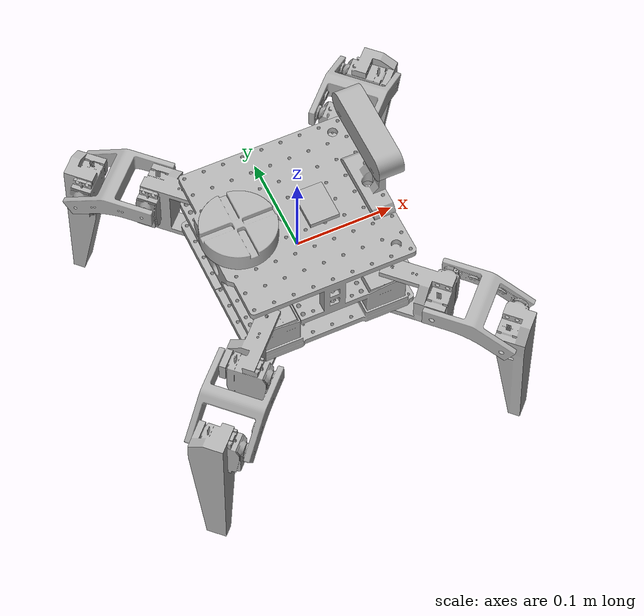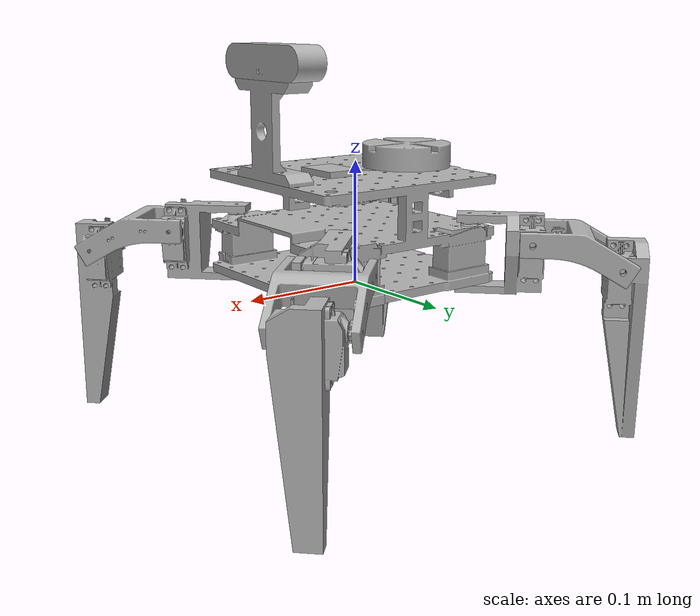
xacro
<?xml version="1.0" ?>
<robot name="prjct_spider_bot" xmlns:xacro="http://www.ros.org/wiki/xacro">

  <xacro:arg name="use_ros2_control" default="false"/>

<xacro:include filename="$(find prjct_spider_bot_description)/urdf/materials.xacro" />
<xacro:if value="$(arg use_ros2_control)">
  <xacro:include filename="$(find prjct_spider_bot_description)/urdf/prjct_spider_bot.ros2control.xml" />
</xacro:if>
<xacro:include filename="$(find prjct_spider_bot_description)/urdf/prjct_spider_bot.gazebo" />
<link name="base_link">
  <inertial>
    <origin xyz="-0.011634383299055345 -0.020012327327441907 0.04021488449284461" rpy="0 0 0"/>
    <mass value="5.582430267110478"/>
    <inertia ixx="0.022303" iyy="0.019413" izz="0.030673" ixy="-6e-06" iyz="4e-06" ixz="0.000124"/>
  </inertial>
  <visual>
    <origin xyz="0 0 0" rpy="0 0 0"/>
    <geometry>
      <mesh filename="file://$(find prjct_spider_bot_description)/meshes/base_link.stl" scale="0.001 0.001 0.001"/>
    </geometry>
    <material name="silver"/>
  </visual>
  <collision>
    <origin xyz="0 0 0" rpy="0 0 0"/>
    <geometry>
      <mesh filename="file://$(find prjct_spider_bot_description)/meshes/base_link.stl" scale="0.001 0.001 0.001"/>
    </geometry>
  </collision>
</link>

<link name="lidar_1">
  <inertial>
    <origin xyz="1.1999484417213324e-07 7.555305850739935e-08 0.009521070328133499" rpy="0 0 0"/>
    <mass value="0.6521818172175858"/>
    <inertia ixx="0.000253" iyy="0.000253" izz="0.000465" ixy="-0.0" iyz="-0.0" ixz="-0.0"/>
  </inertial>
  <visual>
    <origin xyz="0.069407 0.019459 -0.0877" rpy="0 0 0"/>
    <geometry>
      <mesh filename="file://$(find prjct_spider_bot_description)/meshes/lidar_1.stl" scale="0.001 0.001 0.001"/>
    </geometry>
    <material name="silver"/>
  </visual>
  <collision>
    <origin xyz="0.069407 0.019459 -0.0877" rpy="0 0 0"/>
    <geometry>
      <mesh filename="file://$(find prjct_spider_bot_description)/meshes/lidar_1.stl" scale="0.001 0.001 0.001"/>
    </geometry>
  </collision>
</link>

<link name="imu_1">
  <inertial>
    <origin xyz="6.730727086790012e-16 -4.6485218993877475e-07 0.002500000000000016" rpy="0 0 0"/>
    <mass value="0.047099999999999996"/>
    <inertia ixx="6e-06" iyy="4e-06" izz="1e-05" ixy="0.0" iyz="-0.0" ixz="0.0"/>
  </inertial>
  <visual>
    <origin xyz="-0.01 0.02 -0.0877" rpy="0 0 0"/>
    <geometry>
      <mesh filename="file://$(find prjct_spider_bot_description)/meshes/imu_1.stl" scale="0.001 0.001 0.001"/>
    </geometry>
    <material name="silver"/>
  </visual>
  <collision>
    <origin xyz="-0.01 0.02 -0.0877" rpy="0 0 0"/>
    <geometry>
      <mesh filename="file://$(find prjct_spider_bot_description)/meshes/imu_1.stl" scale="0.001 0.001 0.001"/>
    </geometry>
  </collision>
</link>

<link name="camera_stand_1">
  <inertial>
    <origin xyz="0.002322519957098118 -4.6855707672502356e-07 0.039074935332732846" rpy="0 0 0"/>
    <mass value="0.28621405783156734"/>
    <inertia ixx="0.000356" iyy="0.000274" izz="0.000106" ixy="-0.0" iyz="-0.0" ixz="-0.0"/>
  </inertial>
  <visual>
    <origin xyz="-0.064 0.02 -0.0877" rpy="0 0 0"/>
    <geometry>
      <mesh filename="file://$(find prjct_spider_bot_description)/meshes/camera_stand_1.stl" scale="0.001 0.001 0.001"/>
    </geometry>
    <material name="silver"/>
  </visual>
  <collision>
    <origin xyz="-0.064 0.02 -0.0877" rpy="0 0 0"/>
    <geometry>
      <mesh filename="file://$(find prjct_spider_bot_description)/meshes/camera_stand_1.stl" scale="0.001 0.001 0.001"/>
    </geometry>
  </collision>
</link>

<link name="camera_1">
  <inertial>
    <origin xyz="0.0008434977883624573 5.831530578740904e-05 0.013851911513465182" rpy="0 0 0"/>
    <mass value="0.04133715258262728"/>
    <inertia ixx="4.5e-05" iyy="8e-06" izz="4.5e-05" ixy="0.0" iyz="0.0" ixz="-0.0"/>
  </inertial>
  <visual>
    <origin xyz="-0.061225 0.02 -0.1647" rpy="0 0 0"/>
    <geometry>
      <mesh filename="file://$(find prjct_spider_bot_description)/meshes/camera_1.stl" scale="0.001 0.001 0.001"/>
    </geometry>
    <material name="silver"/>
  </visual>
  <collision>
    <origin xyz="-0.061225 0.02 -0.1647" rpy="0 0 0"/>
    <geometry>
      <mesh filename="file://$(find prjct_spider_bot_description)/meshes/camera_1.stl" scale="0.001 0.001 0.001"/>
    </geometry>
  </collision>
</link>
<!-- === Locked sensor mount frames (aliases) === -->
<link name="lidar_link"/>
<link name="camera_link"/>
<link name="camera_optical_frame"/>

<joint name="J_lidar_alias" type="fixed">
  <parent link="lidar_1"/>
  <child link="lidar_link"/>
  <origin xyz="0 0 0" rpy="0 0 0"/>
</joint>

<joint name="J_camera_alias" type="fixed">
  <parent link="camera_1"/>
  <child link="camera_link"/>
  <origin xyz="0 0 0" rpy="0 0 0"/>
</joint>

<!-- REP-103 optical frame: X right, Y down, Z forward -->
<joint name="J_camera_optical" type="fixed">
  <parent link="camera_link"/>
  <child link="camera_optical_frame"/>
  <origin xyz="0 0 0" rpy="-1.57079632679 0 -1.57079632679"/>
</joint>

<link name="coxa_FR_1">
  <inertial>
    <origin xyz="-0.028011122462089755 0.02918946766406348 -0.02516145237879074" rpy="0 0 0"/>
    <mass value="0.5326447248518721"/>
    <inertia ixx="0.00026" iyy="0.000276" izz="0.000188" ixy="2.9e-05" iyz="-1e-05" ixz="-2e-06"/>
  </inertial>
  <visual>
    <origin xyz="0.0749 -0.0542 -0.0528" rpy="0 0 0"/>
    <geometry>
      <mesh filename="file://$(find prjct_spider_bot_description)/meshes/coxa_FR_1.stl" scale="0.001 0.001 0.001"/>
    </geometry>
    <material name="silver"/>
  </visual>
  <collision>
    <origin xyz="0.0749 -0.0542 -0.0528" rpy="0 0 0"/>
    <geometry>
      <mesh filename="file://$(find prjct_spider_bot_description)/meshes/coxa_FR_1.stl" scale="0.001 0.001 0.001"/>
    </geometry>
  </collision>
</link>

<link name="femur_FR_1">
  <inertial>
    <origin xyz="-0.006558818685370449 0.04487966340235518 -0.0035371973943164325" rpy="0 0 0"/>
    <mass value="0.3037238401732045"/>
    <inertia ixx="0.000169" iyy="0.000169" izz="0.000293" ixy="-3.2e-05" iyz="1.9e-05" ixz="-1.9e-05"/>
  </inertial>
  <visual>
    <origin xyz="0.130196 -0.070181 -0.0387" rpy="0 0 0"/>
    <geometry>
      <mesh filename="file://$(find prjct_spider_bot_description)/meshes/femur_FR_1.stl" scale="0.001 0.001 0.001"/>
    </geometry>
    <material name="silver"/>
  </visual>
  <collision>
    <origin xyz="0.130196 -0.070181 -0.0387" rpy="0 0 0"/>
    <geometry>
      <mesh filename="file://$(find prjct_spider_bot_description)/meshes/femur_FR_1.stl" scale="0.001 0.001 0.001"/>
    </geometry>
  </collision>
</link>

<link name="tibia_FR_1">
  <inertial>
    <origin xyz="0.015552752309943102 0.02595204711365401 -0.04435033820279627" rpy="0 0 0"/>
    <mass value="0.856718844269578"/>
    <inertia ixx="0.001697" iyy="0.001665" izz="0.000146" ixy="-1.3e-05" iyz="6.5e-05" ixz="-7.6e-05"/>
  </inertial>
  <visual>
    <origin xyz="0.179439 -0.119425 -0.02004" rpy="0 0 0"/>
    <geometry>
      <mesh filename="file://$(find prjct_spider_bot_description)/meshes/tibia_FR_1.stl" scale="0.001 0.001 0.001"/>
    </geometry>
    <material name="silver"/>
  </visual>
  <collision>
    <origin xyz="0.179439 -0.119425 -0.02004" rpy="0 0 0"/>
    <geometry>
      <mesh filename="file://$(find prjct_spider_bot_description)/meshes/tibia_FR_1.stl" scale="0.001 0.001 0.001"/>
    </geometry>
  </collision>
</link>

<link name="coxa_BR_1">
  <inertial>
    <origin xyz="0.029189002811872485 0.028011587314280273 -0.025161452378790708" rpy="0 0 0"/>
    <mass value="0.5326447248518721"/>
    <inertia ixx="0.000276" iyy="0.00026" izz="0.000188" ixy="-2.9e-05" iyz="2e-06" ixz="-1e-05"/>
  </inertial>
  <visual>
    <origin xyz="-0.0549 -0.0542 -0.0528" rpy="0 0 0"/>
    <geometry>
      <mesh filename="file://$(find prjct_spider_bot_description)/meshes/coxa_BR_1.stl" scale="0.001 0.001 0.001"/>
    </geometry>
    <material name="silver"/>
  </visual>
  <collision>
    <origin xyz="-0.0549 -0.0542 -0.0528" rpy="0 0 0"/>
    <geometry>
      <mesh filename="file://$(find prjct_spider_bot_description)/meshes/coxa_BR_1.stl" scale="0.001 0.001 0.001"/>
    </geometry>
  </collision>
</link>

<link name="femur_BR_1">
  <inertial>
    <origin xyz="0.04487919855016356 0.0065592835375610226 -0.003537197394316516" rpy="0 0 0"/>
    <mass value="0.3037238401732045"/>
    <inertia ixx="0.000169" iyy="0.000169" izz="0.000293" ixy="3.2e-05" iyz="1.9e-05" ixz="1.9e-05"/>
  </inertial>
  <visual>
    <origin xyz="-0.070881 -0.109496 -0.0387" rpy="0 0 0"/>
    <geometry>
      <mesh filename="file://$(find prjct_spider_bot_description)/meshes/femur_BR_1.stl" scale="0.001 0.001 0.001"/>
    </geometry>
    <material name="silver"/>
  </visual>
  <collision>
    <origin xyz="-0.070881 -0.109496 -0.0387" rpy="0 0 0"/>
    <geometry>
      <mesh filename="file://$(find prjct_spider_bot_description)/meshes/femur_BR_1.stl" scale="0.001 0.001 0.001"/>
    </geometry>
  </collision>
</link>

<link name="tibia_BR_1">
  <inertial>
    <origin xyz="0.0259525822614622 -0.015553287457752918 -0.04435033820279581" rpy="0 0 0"/>
    <mass value="0.856718844269578"/>
    <inertia ixx="0.001665" iyy="0.001697" izz="0.000146" ixy="1.3e-05" iyz="7.6e-05" ixz="6.5e-05"/>
  </inertial>
  <visual>
    <origin xyz="-0.120124 -0.15874 -0.02004" rpy="0 0 0"/>
    <geometry>
      <mesh filename="file://$(find prjct_spider_bot_description)/meshes/tibia_BR_1.stl" scale="0.001 0.001 0.001"/>
    </geometry>
    <material name="silver"/>
  </visual>
  <collision>
    <origin xyz="-0.120124 -0.15874 -0.02004" rpy="0 0 0"/>
    <geometry>
      <mesh filename="file://$(find prjct_spider_bot_description)/meshes/tibia_BR_1.stl" scale="0.001 0.001 0.001"/>
    </geometry>
  </collision>
</link>

<link name="coxa_FL_1">
  <inertial>
    <origin xyz="-0.029189002811871978 -0.028011587314280176 -0.025161452378790538" rpy="0 0 0"/>
    <mass value="0.5326447248518721"/>
    <inertia ixx="0.000276" iyy="0.00026" izz="0.000188" ixy="-2.9e-05" iyz="-2e-06" ixz="1e-05"/>
  </inertial>
  <visual>
    <origin xyz="0.0749 0.0942 -0.0528" rpy="0 0 0"/>
    <geometry>
      <mesh filename="file://$(find prjct_spider_bot_description)/meshes/coxa_FL_1.stl" scale="0.001 0.001 0.001"/>
    </geometry>
    <material name="silver"/>
  </visual>
  <collision>
    <origin xyz="0.0749 0.0942 -0.0528" rpy="0 0 0"/>
    <geometry>
      <mesh filename="file://$(find prjct_spider_bot_description)/meshes/coxa_FL_1.stl" scale="0.001 0.001 0.001"/>
    </geometry>
  </collision>
</link>

<link name="femur_FL_1">
  <inertial>
    <origin xyz="-0.0448791985501633 -0.006559283537560828 -0.0035371973943163076" rpy="0 0 0"/>
    <mass value="0.3037238401732045"/>
    <inertia ixx="0.000169" iyy="0.000169" izz="0.000293" ixy="3.2e-05" iyz="-1.9e-05" ixz="-1.9e-05"/>
  </inertial>
  <visual>
    <origin xyz="0.090881 0.149496 -0.0387" rpy="0 0 0"/>
    <geometry>
      <mesh filename="file://$(find prjct_spider_bot_description)/meshes/femur_FL_1.stl" scale="0.001 0.001 0.001"/>
    </geometry>
    <material name="silver"/>
  </visual>
  <collision>
    <origin xyz="0.090881 0.149496 -0.0387" rpy="0 0 0"/>
    <geometry>
      <mesh filename="file://$(find prjct_spider_bot_description)/meshes/femur_FL_1.stl" scale="0.001 0.001 0.001"/>
    </geometry>
  </collision>
</link>

<link name="tibia_FL_1">
  <inertial>
    <origin xyz="-0.025952582261461687 0.015553287457753001 -0.0443503382027953" rpy="0 0 0"/>
    <mass value="0.856718844269578"/>
    <inertia ixx="0.001665" iyy="0.001697" izz="0.000146" ixy="1.3e-05" iyz="-7.6e-05" ixz="-6.5e-05"/>
  </inertial>
  <visual>
    <origin xyz="0.140124 0.19874 -0.02004" rpy="0 0 0"/>
    <geometry>
      <mesh filename="file://$(find prjct_spider_bot_description)/meshes/tibia_FL_1.stl" scale="0.001 0.001 0.001"/>
    </geometry>
    <material name="silver"/>
  </visual>
  <collision>
    <origin xyz="0.140124 0.19874 -0.02004" rpy="0 0 0"/>
    <geometry>
      <mesh filename="file://$(find prjct_spider_bot_description)/meshes/tibia_FL_1.stl" scale="0.001 0.001 0.001"/>
    </geometry>
  </collision>
</link>

<link name="coxa_BL_1">
  <inertial>
    <origin xyz="0.030448520904464337 -0.026637064512584144 -0.02516145237879068" rpy="0 0 0"/>
    <mass value="0.5326447248518721"/>
    <inertia ixx="0.000255" iyy="0.000281" izz="0.000188" ixy="2.7e-05" iyz="1e-05" ixz="1e-06"/>
  </inertial>
  <visual>
    <origin xyz="-0.0549 0.0942 -0.0528" rpy="0 0 0"/>
    <geometry>
      <mesh filename="file://$(find prjct_spider_bot_description)/meshes/coxa_BL_1.stl" scale="0.001 0.001 0.001"/>
    </geometry>
    <material name="silver"/>
  </visual>
  <collision>
    <origin xyz="-0.0549 0.0942 -0.0528" rpy="0 0 0"/>
    <geometry>
      <mesh filename="file://$(find prjct_spider_bot_description)/meshes/coxa_BL_1.stl" scale="0.001 0.001 0.001"/>
    </geometry>
  </collision>
</link>

<link name="femur_BL_1">
  <inertial>
    <origin xyz="0.010445758234201477 -0.04413706930762948 -0.0035371973943158427" rpy="0 0 0"/>
    <mass value="0.3037238401732045"/>
    <inertia ixx="0.000174" iyy="0.000163" izz="0.000293" ixy="-3.2e-05" iyz="-1.7e-05" ixz="2e-05"/>
  </inertial>
  <visual>
    <origin xyz="-0.111378 0.105301 -0.0387" rpy="0 0 0"/>
    <geometry>
      <mesh filename="file://$(find prjct_spider_bot_description)/meshes/femur_BL_1.stl" scale="0.001 0.001 0.001"/>
    </geometry>
    <material name="silver"/>
  </visual>
  <collision>
    <origin xyz="-0.111378 0.105301 -0.0387" rpy="0 0 0"/>
    <geometry>
      <mesh filename="file://$(find prjct_spider_bot_description)/meshes/femur_BL_1.stl" scale="0.001 0.001 0.001"/>
    </geometry>
  </collision>
</link>

<link name="tibia_BL_1">
  <inertial>
    <origin xyz="-0.013231809099896463 -0.02720943017943131 -0.04435033820279533" rpy="0 0 0"/>
    <mass value="0.856718844269578"/>
    <inertia ixx="0.001699" iyy="0.001663" izz="0.000146" ixy="-1e-05" iyz="-5.8e-05" ixz="8.1e-05"/>
  </inertial>
  <visual>
    <origin xyz="-0.164726 0.150065 -0.02004" rpy="0 0 0"/>
    <geometry>
      <mesh filename="file://$(find prjct_spider_bot_description)/meshes/tibia_BL_1.stl" scale="0.001 0.001 0.001"/>
    </geometry>
    <material name="silver"/>
  </visual>
  <collision>
    <origin xyz="-0.164726 0.150065 -0.02004" rpy="0 0 0"/>
    <geometry>
      <mesh filename="file://$(find prjct_spider_bot_description)/meshes/tibia_BL_1.stl" scale="0.001 0.001 0.001"/>
    </geometry>
  </collision>
</link>

<joint name="J_Lidar" type="continuous">
  <origin xyz="-0.069407 -0.019459 0.0877" rpy="0 0 0"/>
  <parent link="base_link"/>
  <child link="lidar_1"/>
  <axis xyz="0.0 0.0 -1.0"/>
</joint>

<joint name="J_IMU" type="fixed">
  <origin xyz="0.01 -0.02 0.0877" rpy="0 0 0"/>
  <parent link="base_link"/>
  <child link="imu_1"/>
</joint>

<joint name="J_camstand" type="fixed">
  <origin xyz="0.064 -0.02 0.0877" rpy="0 0 0"/>
  <parent link="base_link"/>
  <child link="camera_stand_1"/>
</joint>

<joint name="J_Camera" type="fixed">
  <origin xyz="-0.002775 0.0 0.077" rpy="0 0 0"/>
  <parent link="camera_stand_1"/>
  <child link="camera_1"/>
</joint>

<joint name="J_Coxa_FR" type="revolute">
  <origin xyz="-0.0749 0.0542 0.0528" rpy="0 0 0"/>
  <parent link="base_link"/>
  <child link="coxa_FR_1"/>
  <axis xyz="0.0 0.0 1.0"/>
  <limit upper="1.308997" lower="-1.308997" effort="100" velocity="100"/>
</joint>

<joint name="J_Femur_FR" type="revolute">
  <origin xyz="-0.055296 0.015981 -0.0141" rpy="0 0 0"/>
  <parent link="coxa_FR_1"/>
  <child link="femur_FR_1"/>
  <axis xyz="-0.707107 -0.707107 -0.0"/>
  <limit upper="0.785398" lower="-1.570796" effort="100" velocity="100"/>
</joint>

<joint name="J_Tibia_FR" type="revolute">
  <origin xyz="-0.049243 0.049244 -0.01866" rpy="0 0 0"/>
  <parent link="femur_FR_1"/>
  <child link="tibia_FR_1"/>
  <axis xyz="0.707107 0.707107 -0.0"/>
  <limit upper="1.570796" lower="-1.308997" effort="100" velocity="100"/>
</joint>

<joint name="J_Coxa_BR" type="revolute">
  <origin xyz="0.0549 0.0542 0.0528" rpy="0 0 0"/>
  <parent link="base_link"/>
  <child link="coxa_BR_1"/>
  <axis xyz="0.0 0.0 1.0"/>
  <limit upper="1.308997" lower="-1.308997" effort="100" velocity="100"/>
</joint>

<joint name="J_Femur_BR" type="revolute">
  <origin xyz="0.015981 0.055296 -0.0141" rpy="0 0 0"/>
  <parent link="coxa_BR_1"/>
  <child link="femur_BR_1"/>
  <axis xyz="-0.707107 0.707107 -0.0"/>
  <limit upper="0.785398" lower="-1.570796" effort="100" velocity="100"/>
</joint>

<joint name="J_Tibia_BR" type="revolute">
  <origin xyz="0.049243 0.049244 -0.01866" rpy="0 0 0"/>
  <parent link="femur_BR_1"/>
  <child link="tibia_BR_1"/>
  <axis xyz="0.707107 -0.707107 0.0"/>
  <limit upper="1.570796" lower="-1.308997" effort="100" velocity="100"/>
</joint>

<joint name="J_Coxa_FL" type="revolute">
  <origin xyz="-0.0749 -0.0942 0.0528" rpy="0 0 0"/>
  <parent link="base_link"/>
  <child link="coxa_FL_1"/>
  <axis xyz="0.0 0.0 1.0"/>
  <limit upper="1.570796" lower="-1.047198" effort="100" velocity="100"/>
</joint>

<joint name="J_Femur_FL" type="revolute">
  <origin xyz="-0.015981 -0.055296 -0.0141" rpy="0 0 0"/>
  <parent link="coxa_FL_1"/>
  <child link="femur_FL_1"/>
  <axis xyz="0.707107 -0.707107 -0.0"/>
  <limit upper="0.785398" lower="-1.570796" effort="100" velocity="100"/>
</joint>

<joint name="J_Tibia_FL" type="revolute">
  <origin xyz="-0.049243 -0.049244 -0.01866" rpy="0 0 0"/>
  <parent link="femur_FL_1"/>
  <child link="tibia_FL_1"/>
  <axis xyz="-0.707107 0.707107 0.0"/>
  <limit upper="1.570796" lower="-1.308997" effort="100" velocity="100"/>
</joint>

<joint name="J_Coxa_BL" type="revolute">
  <origin xyz="0.0549 -0.0942 0.0528" rpy="0 0 0"/>
  <parent link="base_link"/>
  <child link="coxa_BL_1"/>
  <axis xyz="0.0 0.0 1.0"/>
  <limit upper="1.22173" lower="-1.396263" effort="100" velocity="100"/>
</joint>

<joint name="J_Femur_BL" type="revolute">
  <origin xyz="0.056478 -0.011101 -0.0141" rpy="0 0 0"/>
  <parent link="coxa_BL_1"/>
  <child link="femur_BL_1"/>
  <axis xyz="0.642788 0.766044 -0.0"/>
  <limit upper="0.785398" lower="-1.570796" effort="100" velocity="100"/>
</joint>

<joint name="J_Tibia_BL" type="revolute">
  <origin xyz="0.053348 -0.044764 -0.01866" rpy="0 0 0"/>
  <parent link="femur_BL_1"/>
  <child link="tibia_BL_1"/>
  <axis xyz="-0.642788 -0.766044 0.0"/>
  <limit upper="1.570796" lower="-1.308997" effort="100" velocity="100"/>
</joint>

</robot>

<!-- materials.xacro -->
<robot name="prjct_spider_bot" xmlns:xacro="http://www.ros.org/wiki/xacro" >

<material name="silver">
  <color rgba="0.700 0.700 0.700 1.000"/>
</material>

</robot>

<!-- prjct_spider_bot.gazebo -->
<robot name="prjct_spider_bot" xmlns:xacro="http://www.ros.org/wiki/xacro" >

<xacro:property name="body_color" value="Gazebo/Silver" />

<gazebo reference="base_link">
  <material>${body_color}</material>
  <mu1>0.2</mu1>
  <mu2>0.2</mu2>
  <self_collide>true</self_collide>
  <gravity>true</gravity>
</gazebo>

<gazebo reference="lidar_1">
  <material>${body_color}</material>
  <mu1>0.2</mu1>
  <mu2>0.2</mu2>
  <self_collide>true</self_collide>
</gazebo>

<gazebo reference="imu_1">
  <material>${body_color}</material>
  <mu1>0.2</mu1>
  <mu2>0.2</mu2>
  <self_collide>true</self_collide>
</gazebo>

<gazebo reference="camera_stand_1">
  <material>${body_color}</material>
  <mu1>0.2</mu1>
  <mu2>0.2</mu2>
  <self_collide>true</self_collide>
</gazebo>

<gazebo reference="camera_1">
  <material>${body_color}</material>
  <mu1>0.2</mu1>
  <mu2>0.2</mu2>
  <self_collide>true</self_collide>
</gazebo>

<gazebo reference="coxa_FR_1">
  <material>${body_color}</material>
  <mu1>0.2</mu1>
  <mu2>0.2</mu2>
  <self_collide>true</self_collide>
</gazebo>

<gazebo reference="femur_FR_1">
  <material>${body_color}</material>
  <mu1>0.2</mu1>
  <mu2>0.2</mu2>
  <self_collide>true</self_collide>
</gazebo>

<gazebo reference="tibia_FR_1">
  <material>${body_color}</material>
  <mu1>0.2</mu1>
  <mu2>0.2</mu2>
  <self_collide>true</self_collide>
</gazebo>

<gazebo reference="coxa_BR_1">
  <material>${body_color}</material>
  <mu1>0.2</mu1>
  <mu2>0.2</mu2>
  <self_collide>true</self_collide>
</gazebo>

<gazebo reference="femur_BR_1">
  <material>${body_color}</material>
  <mu1>0.2</mu1>
  <mu2>0.2</mu2>
  <self_collide>true</self_collide>
</gazebo>

<gazebo reference="tibia_BR_1">
  <material>${body_color}</material>
  <mu1>0.2</mu1>
  <mu2>0.2</mu2>
  <self_collide>true</self_collide>
</gazebo>

<gazebo reference="coxa_FL_1">
  <material>${body_color}</material>
  <mu1>0.2</mu1>
  <mu2>0.2</mu2>
  <self_collide>true</self_collide>
</gazebo>

<gazebo reference="femur_FL_1">
  <material>${body_color}</material>
  <mu1>0.2</mu1>
  <mu2>0.2</mu2>
  <self_collide>true</self_collide>
</gazebo>

<gazebo reference="tibia_FL_1">
  <material>${body_color}</material>
  <mu1>0.2</mu1>
  <mu2>0.2</mu2>
  <self_collide>true</self_collide>
</gazebo>

<gazebo reference="coxa_BL_1">
  <material>${body_color}</material>
  <mu1>0.2</mu1>
  <mu2>0.2</mu2>
  <self_collide>true</self_collide>
</gazebo>

<gazebo reference="femur_BL_1">
  <material>${body_color}</material>
  <mu1>0.2</mu1>
  <mu2>0.2</mu2>
  <self_collide>true</self_collide>
</gazebo>

<gazebo reference="tibia_BL_1">
  <material>${body_color}</material>
  <mu1>0.2</mu1>
  <mu2>0.2</mu2>
  <self_collide>true</self_collide>
</gazebo>

</robot>
